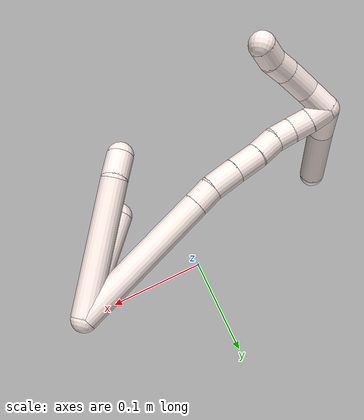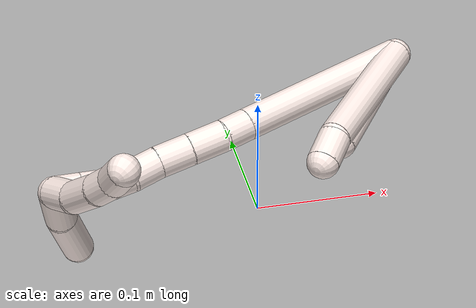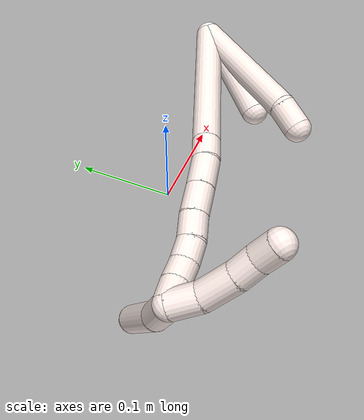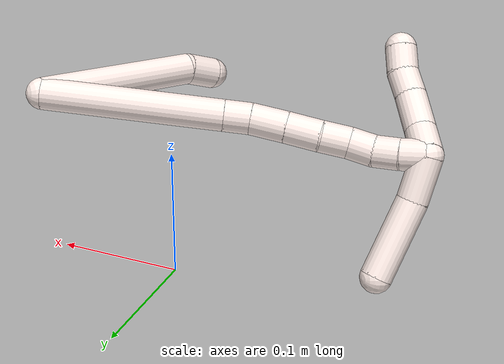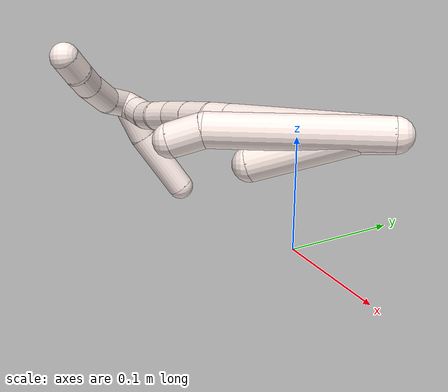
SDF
<sdf version="1.7">
 <world name="default">
  <model name="11">
   <static>0</static>
   <link name="11">
    <collision name="collision-cylinder-e_1_2_8">
     <pose>0.002112 0.006856 0.062228 -0.10974 0.03373 -0.001853</pose>
     <geometry><cylinder><radius>0.0125</radius><length>0.12528</length></cylinder></geometry>
     <surface>
      <friction><ode><mu>1.16</mu><mu2>1.16</mu2><slip1>0</slip1><slip2>0</slip2></ode></friction>
      <contact><ode><kp>1e+06</kp><kd>1</kd><max_vel>0</max_vel><min_depth>0.001</min_depth></ode></contact>
     </surface>
    </collision>
    <visual name="visual-cylinder-e_1_2_8">
     <pose>0.002112 0.006856 0.062228 -0.10974 0.03373 -0.001853</pose>
     <geometry><cylinder><radius>0.0125</radius><length>0.12528</length></cylinder></geometry>
     <material><ambient>1 0.933333 0.909804 1</ambient></material>
    </visual>
    <collision name="collision-cylinder-e_2_8_6">
     <pose>0.005992 0.011383 0.136464 0.191582 0.143496 0.013811</pose>
     <geometry><cylinder><radius>0.0125</radius><length>0.02472</length></cylinder></geometry>
     <surface>
      <friction><ode><mu>1.16</mu><mu2>1.16</mu2><slip1>0</slip1><slip2>0</slip2></ode></friction>
      <contact><ode><kp>1e+06</kp><kd>1</kd><max_vel>0</max_vel><min_depth>0.001</min_depth></ode></contact>
     </surface>
    </collision>
    <visual name="visual-cylinder-e_2_8_6">
     <pose>0.005992 0.011383 0.136464 0.191582 0.143496 0.013811</pose>
     <geometry><cylinder><radius>0.0125</radius><length>0.02472</length></cylinder></geometry>
     <material><ambient>1 0.933333 0.909804 1</ambient></material>
    </visual>
    <collision name="collision-cylinder-e_1_2_9">
     <pose>-6.4e-05 0.000401 0.011723 -0.034192 -0.005433 9.3e-05</pose>
     <geometry><cylinder><radius>0.0125</radius><length>0.023461</length></cylinder></geometry>
     <surface>
      <friction><ode><mu>1.16</mu><mu2>1.16</mu2><slip1>0</slip1><slip2>0</slip2></ode></friction>
      <contact><ode><kp>1e+06</kp><kd>1</kd><max_vel>0</max_vel><min_depth>0.001</min_depth></ode></contact>
     </surface>
    </collision>
    <visual name="visual-cylinder-e_1_2_9">
     <pose>-6.4e-05 0.000401 0.011723 -0.034192 -0.005433 9.3e-05</pose>
     <geometry><cylinder><radius>0.0125</radius><length>0.023461</length></cylinder></geometry>
     <material><ambient>1 0.933333 0.909804 1</ambient></material>
    </visual>
    <collision name="collision-cylinder-e_2_9_5">
     <pose>0.001903 -0.00769 0.060707 0.224075 0.053084 0.005974</pose>
     <geometry><cylinder><radius>0.0125</radius><length>0.076539</length></cylinder></geometry>
     <surface>
      <friction><ode><mu>1.16</mu><mu2>1.16</mu2><slip1>0</slip1><slip2>0</slip2></ode></friction>
      <contact><ode><kp>1e+06</kp><kd>1</kd><max_vel>0</max_vel><min_depth>0.001</min_depth></ode></contact>
     </surface>
    </collision>
    <visual name="visual-cylinder-e_2_9_5">
     <pose>0.001903 -0.00769 0.060707 0.224075 0.053084 0.005974</pose>
     <geometry><cylinder><radius>0.0125</radius><length>0.076539</length></cylinder></geometry>
     <material><ambient>1 0.933333 0.909804 1</ambient></material>
    </visual>
    <collision name="collision-cylinder-e_1_2_10">
     <pose>-0.031981 -0.010741 0.061854 0.171937 -0.471146 -0.041366</pose>
     <geometry><cylinder><radius>0.0125</radius><length>0.140912</length></cylinder></geometry>
     <surface>
      <friction><ode><mu>1.16</mu><mu2>1.16</mu2><slip1>0</slip1><slip2>0</slip2></ode></friction>
      <contact><ode><kp>1e+06</kp><kd>1</kd><max_vel>0</max_vel><min_depth>0.001</min_depth></ode></contact>
     </surface>
    </collision>
    <visual name="visual-cylinder-e_1_2_10">
     <pose>-0.031981 -0.010741 0.061854 0.171937 -0.471146 -0.041366</pose>
     <geometry><cylinder><radius>0.0125</radius><length>0.140912</length></cylinder></geometry>
     <material><ambient>1 0.933333 0.909804 1</ambient></material>
    </visual>
    <collision name="collision-cylinder-e_2_10_11">
     <pose>-0.068695 -0.02309 0.132948 0.17231 -0.467387 -0.041113</pose>
     <geometry><cylinder><radius>0.0125</radius><length>0.021012</length></cylinder></geometry>
     <surface>
      <friction><ode><mu>1.16</mu><mu2>1.16</mu2><slip1>0</slip1><slip2>0</slip2></ode></friction>
      <contact><ode><kp>1e+06</kp><kd>1</kd><max_vel>0</max_vel><min_depth>0.001</min_depth></ode></contact>
     </surface>
    </collision>
    <visual name="visual-cylinder-e_2_10_11">
     <pose>-0.068695 -0.02309 0.132948 0.17231 -0.467387 -0.041113</pose>
     <geometry><cylinder><radius>0.0125</radius><length>0.021012</length></cylinder></geometry>
     <material><ambient>1 0.933333 0.909804 1</ambient></material>
    </visual>
    <collision name="collision-cylinder-e_3_11_12">
     <pose>-0.081184 -0.028324 0.153489 0.310477 -0.578844 -0.093137</pose>
     <geometry><cylinder><radius>0.0125</radius><length>0.028354</length></cylinder></geometry>
     <surface>
      <friction><ode><mu>1.16</mu><mu2>1.16</mu2><slip1>0</slip1><slip2>0</slip2></ode></friction>
      <contact><ode><kp>1e+06</kp><kd>1</kd><max_vel>0</max_vel><min_depth>0.001</min_depth></ode></contact>
     </surface>
    </collision>
    <visual name="visual-cylinder-e_3_11_12">
     <pose>-0.081184 -0.028324 0.153489 0.310477 -0.578844 -0.093137</pose>
     <geometry><cylinder><radius>0.0125</radius><length>0.028354</length></cylinder></geometry>
     <material><ambient>1 0.933333 0.909804 1</ambient></material>
    </visual>
    <collision name="collision-cylinder-e_4_12_13">
     <pose>-0.096419 -0.035585 0.175295 0.333104 -0.59224 -0.102487</pose>
     <geometry><cylinder><radius>0.0125</radius><length>0.026797</length></cylinder></geometry>
     <surface>
      <friction><ode><mu>1.16</mu><mu2>1.16</mu2><slip1>0</slip1><slip2>0</slip2></ode></friction>
      <contact><ode><kp>1e+06</kp><kd>1</kd><max_vel>0</max_vel><min_depth>0.001</min_depth></ode></contact>
     </surface>
    </collision>
    <visual name="visual-cylinder-e_4_12_13">
     <pose>-0.096419 -0.035585 0.175295 0.333104 -0.59224 -0.102487</pose>
     <geometry><cylinder><radius>0.0125</radius><length>0.026797</length></cylinder></geometry>
     <material><ambient>1 0.933333 0.909804 1</ambient></material>
    </visual>
    <collision name="collision-cylinder-e_5_13_14">
     <pose>-0.109116 -0.042093 0.195375 0.2916 -0.481045 -0.072001</pose>
     <geometry><cylinder><radius>0.0125</radius><length>0.022552</length></cylinder></geometry>
     <surface>
      <friction><ode><mu>1.16</mu><mu2>1.16</mu2><slip1>0</slip1><slip2>0</slip2></ode></friction>
      <contact><ode><kp>1e+06</kp><kd>1</kd><max_vel>0</max_vel><min_depth>0.001</min_depth></ode></contact>
     </surface>
    </collision>
    <visual name="visual-cylinder-e_5_13_14">
     <pose>-0.109116 -0.042093 0.195375 0.2916 -0.481045 -0.072001</pose>
     <geometry><cylinder><radius>0.0125</radius><length>0.022552</length></cylinder></geometry>
     <material><ambient>1 0.933333 0.909804 1</ambient></material>
    </visual>
    <collision name="collision-cylinder-e_6_14_15">
     <pose>-0.120472 -0.048264 0.2123 0.421593 -0.651061 -0.144199</pose>
     <geometry><cylinder><radius>0.0125</radius><length>0.020259</length></cylinder></geometry>
     <surface>
      <friction><ode><mu>1.16</mu><mu2>1.16</mu2><slip1>0</slip1><slip2>0</slip2></ode></friction>
      <contact><ode><kp>1e+06</kp><kd>1</kd><max_vel>0</max_vel><min_depth>0.001</min_depth></ode></contact>
     </surface>
    </collision>
    <visual name="visual-cylinder-e_6_14_15">
     <pose>-0.120472 -0.048264 0.2123 0.421593 -0.651061 -0.144199</pose>
     <geometry><cylinder><radius>0.0125</radius><length>0.020259</length></cylinder></geometry>
     <material><ambient>1 0.933333 0.909804 1</ambient></material>
    </visual>
    <collision name="collision-cylinder-e_7_15_16">
     <pose>-0.133831 -0.052707 0.226476 0.16632 -0.80666 -0.071107</pose>
     <geometry><cylinder><radius>0.0125</radius><length>0.020001</length></cylinder></geometry>
     <surface>
      <friction><ode><mu>1.16</mu><mu2>1.16</mu2><slip1>0</slip1><slip2>0</slip2></ode></friction>
      <contact><ode><kp>1e+06</kp><kd>1</kd><max_vel>0</max_vel><min_depth>0.001</min_depth></ode></contact>
     </surface>
    </collision>
    <visual name="visual-cylinder-e_7_15_16">
     <pose>-0.133831 -0.052707 0.226476 0.16632 -0.80666 -0.071107</pose>
     <geometry><cylinder><radius>0.0125</radius><length>0.020001</length></cylinder></geometry>
     <material><ambient>1 0.933333 0.909804 1</ambient></material>
    </visual>
    <collision name="collision-cylinder-e_8_16_1">
     <pose>-0.147877 -0.054301 0.240671 0.060765 -0.746141 -0.02379</pose>
     <geometry><cylinder><radius>0.0125</radius><length>0.020113</length></cylinder></geometry>
     <surface>
      <friction><ode><mu>1.16</mu><mu2>1.16</mu2><slip1>0</slip1><slip2>0</slip2></ode></friction>
      <contact><ode><kp>1e+06</kp><kd>1</kd><max_vel>0</max_vel><min_depth>0.001</min_depth></ode></contact>
     </surface>
    </collision>
    <visual name="visual-cylinder-e_8_16_1">
     <pose>-0.147877 -0.054301 0.240671 0.060765 -0.746141 -0.02379</pose>
     <geometry><cylinder><radius>0.0125</radius><length>0.020113</length></cylinder></geometry>
     <material><ambient>1 0.933333 0.909804 1</ambient></material>
    </visual>
    <collision name="collision-cylinder-e_1_1_17">
     <pose>-0.151783 -0.071811 0.243148 1.85018 0.163089 0.216093</pose>
     <geometry><cylinder><radius>0.0125</radius><length>0.035976</length></cylinder></geometry>
     <surface>
      <friction><ode><mu>1.16</mu><mu2>1.16</mu2><slip1>0</slip1><slip2>0</slip2></ode></friction>
      <contact><ode><kp>1e+06</kp><kd>1</kd><max_vel>0</max_vel><min_depth>0.001</min_depth></ode></contact>
     </surface>
    </collision>
    <visual name="visual-cylinder-e_1_1_17">
     <pose>-0.151783 -0.071811 0.243148 1.85018 0.163089 0.216093</pose>
     <geometry><cylinder><radius>0.0125</radius><length>0.035976</length></cylinder></geometry>
     <material><ambient>1 0.933333 0.909804 1</ambient></material>
    </visual>
    <collision name="collision-cylinder-e_2_17_4">
     <pose>-0.144841 -0.117265 0.224025 2.03533 0.125947 0.203554</pose>
     <geometry><cylinder><radius>0.0125</radius><length>0.064024</length></cylinder></geometry>
     <surface>
      <friction><ode><mu>1.16</mu><mu2>1.16</mu2><slip1>0</slip1><slip2>0</slip2></ode></friction>
      <contact><ode><kp>1e+06</kp><kd>1</kd><max_vel>0</max_vel><min_depth>0.001</min_depth></ode></contact>
     </surface>
    </collision>
    <visual name="visual-cylinder-e_2_17_4">
     <pose>-0.144841 -0.117265 0.224025 2.03533 0.125947 0.203554</pose>
     <geometry><cylinder><radius>0.0125</radius><length>0.064024</length></cylinder></geometry>
     <material><ambient>1 0.933333 0.909804 1</ambient></material>
    </visual>
    <collision name="collision-cylinder-e_1_1_18">
     <pose>-0.145149 -0.046497 0.252307 -1.0938 0.799474 -0.503538</pose>
     <geometry><cylinder><radius>0.0125</radius><length>0.026653</length></cylinder></geometry>
     <surface>
      <friction><ode><mu>1.16</mu><mu2>1.16</mu2><slip1>0</slip1><slip2>0</slip2></ode></friction>
      <contact><ode><kp>1e+06</kp><kd>1</kd><max_vel>0</max_vel><min_depth>0.001</min_depth></ode></contact>
     </surface>
    </collision>
    <visual name="visual-cylinder-e_1_1_18">
     <pose>-0.145149 -0.046497 0.252307 -1.0938 0.799474 -0.503538</pose>
     <geometry><cylinder><radius>0.0125</radius><length>0.026653</length></cylinder></geometry>
     <material><ambient>1 0.933333 0.909804 1</ambient></material>
    </visual>
    <collision name="collision-cylinder-e_2_18_19">
     <pose>-0.126724 -0.025236 0.25863 -1.41392 0.592759 -0.510361</pose>
     <geometry><cylinder><radius>0.0125</radius><length>0.031756</length></cylinder></geometry>
     <surface>
      <friction><ode><mu>1.16</mu><mu2>1.16</mu2><slip1>0</slip1><slip2>0</slip2></ode></friction>
      <contact><ode><kp>1e+06</kp><kd>1</kd><max_vel>0</max_vel><min_depth>0.001</min_depth></ode></contact>
     </surface>
    </collision>
    <visual name="visual-cylinder-e_2_18_19">
     <pose>-0.126724 -0.025236 0.25863 -1.41392 0.592759 -0.510361</pose>
     <geometry><cylinder><radius>0.0125</radius><length>0.031756</length></cylinder></geometry>
     <material><ambient>1 0.933333 0.909804 1</ambient></material>
    </visual>
    <collision name="collision-cylinder-e_3_19_20">
     <pose>-0.112574 -0.003291 0.26092 -1.54484 0.533349 -0.520297</pose>
     <geometry><cylinder><radius>0.0125</radius><length>0.020766</length></cylinder></geometry>
     <surface>
      <friction><ode><mu>1.16</mu><mu2>1.16</mu2><slip1>0</slip1><slip2>0</slip2></ode></friction>
      <contact><ode><kp>1e+06</kp><kd>1</kd><max_vel>0</max_vel><min_depth>0.001</min_depth></ode></contact>
     </surface>
    </collision>
    <visual name="visual-cylinder-e_3_19_20">
     <pose>-0.112574 -0.003291 0.26092 -1.54484 0.533349 -0.520297</pose>
     <geometry><cylinder><radius>0.0125</radius><length>0.020766</length></cylinder></geometry>
     <material><ambient>1 0.933333 0.909804 1</ambient></material>
    </visual>
    <collision name="collision-cylinder-e_4_20_3">
     <pose>-0.103853 0.01533 0.262826 -1.39959 0.336939 -0.284464</pose>
     <geometry><cylinder><radius>0.0125</radius><length>0.020825</length></cylinder></geometry>
     <surface>
      <friction><ode><mu>1.16</mu><mu2>1.16</mu2><slip1>0</slip1><slip2>0</slip2></ode></friction>
      <contact><ode><kp>1e+06</kp><kd>1</kd><max_vel>0</max_vel><min_depth>0.001</min_depth></ode></contact>
     </surface>
    </collision>
    <visual name="visual-cylinder-e_4_20_3">
     <pose>-0.103853 0.01533 0.262826 -1.39959 0.336939 -0.284464</pose>
     <geometry><cylinder><radius>0.0125</radius><length>0.020825</length></cylinder></geometry>
     <material><ambient>1 0.933333 0.909804 1</ambient></material>
    </visual>
    <collision name="collision-sphere-3">
     <pose>-0.100411 0.025014 0.2645 0 -0 0</pose>
     <geometry><sphere><radius>0.0125</radius></sphere></geometry>
     <surface>
      <friction><ode><mu>1.16</mu><mu2>1.16</mu2><slip1>0</slip1><slip2>0</slip2></ode></friction>
      <contact><ode><kp>1e+06</kp><kd>1</kd><max_vel>0</max_vel><min_depth>0.001</min_depth></ode></contact>
     </surface>
    </collision>
    <visual name="visual-sphere-3">
     <pose>-0.100411 0.025014 0.2645 0 -0 0</pose>
     <geometry><sphere><radius>0.0125</radius></sphere></geometry>
     <material><ambient>1 0.933333 0.909804 1</ambient></material>
    </visual>
    <collision name="collision-sphere-20">
     <pose>-0.107295 0.005647 0.261152 0 -0 0</pose>
     <geometry><sphere><radius>0.0125</radius></sphere></geometry>
     <surface>
      <friction><ode><mu>1.16</mu><mu2>1.16</mu2><slip1>0</slip1><slip2>0</slip2></ode></friction>
      <contact><ode><kp>1e+06</kp><kd>1</kd><max_vel>0</max_vel><min_depth>0.001</min_depth></ode></contact>
     </surface>
    </collision>
    <visual name="visual-sphere-20">
     <pose>-0.107295 0.005647 0.261152 0 -0 0</pose>
     <geometry><sphere><radius>0.0125</radius></sphere></geometry>
     <material><ambient>1 0.933333 0.909804 1</ambient></material>
    </visual>
    <collision name="collision-sphere-19">
     <pose>-0.117853 -0.012229 0.260688 0 -0 0</pose>
     <geometry><sphere><radius>0.0125</radius></sphere></geometry>
     <surface>
      <friction><ode><mu>1.16</mu><mu2>1.16</mu2><slip1>0</slip1><slip2>0</slip2></ode></friction>
      <contact><ode><kp>1e+06</kp><kd>1</kd><max_vel>0</max_vel><min_depth>0.001</min_depth></ode></contact>
     </surface>
    </collision>
    <visual name="visual-sphere-19">
     <pose>-0.117853 -0.012229 0.260688 0 -0 0</pose>
     <geometry><sphere><radius>0.0125</radius></sphere></geometry>
     <material><ambient>1 0.933333 0.909804 1</ambient></material>
    </visual>
    <collision name="collision-sphere-10">
     <pose>-0.063961 -0.021482 0.123708 0 -0 0</pose>
     <geometry><sphere><radius>0.0125</radius></sphere></geometry>
     <surface>
      <friction><ode><mu>1.16</mu><mu2>1.16</mu2><slip1>0</slip1><slip2>0</slip2></ode></friction>
      <contact><ode><kp>1e+06</kp><kd>1</kd><max_vel>0</max_vel><min_depth>0.001</min_depth></ode></contact>
     </surface>
    </collision>
    <visual name="visual-sphere-10">
     <pose>-0.063961 -0.021482 0.123708 0 -0 0</pose>
     <geometry><sphere><radius>0.0125</radius></sphere></geometry>
     <material><ambient>1 0.933333 0.909804 1</ambient></material>
    </visual>
    <collision name="collision-sphere-5">
     <pose>0.003934 -0.016181 0.097967 0 -0 0</pose>
     <geometry><sphere><radius>0.0125</radius></sphere></geometry>
     <surface>
      <friction><ode><mu>1.16</mu><mu2>1.16</mu2><slip1>0</slip1><slip2>0</slip2></ode></friction>
      <contact><ode><kp>1e+06</kp><kd>1</kd><max_vel>0</max_vel><min_depth>0.001</min_depth></ode></contact>
     </surface>
    </collision>
    <visual name="visual-sphere-5">
     <pose>0.003934 -0.016181 0.097967 0 -0 0</pose>
     <geometry><sphere><radius>0.0125</radius></sphere></geometry>
     <material><ambient>1 0.933333 0.909804 1</ambient></material>
    </visual>
    <collision name="collision-sphere-6">
     <pose>0.00776 0.009054 0.148474 0 -0 0</pose>
     <geometry><sphere><radius>0.0125</radius></sphere></geometry>
     <surface>
      <friction><ode><mu>1.16</mu><mu2>1.16</mu2><slip1>0</slip1><slip2>0</slip2></ode></friction>
      <contact><ode><kp>1e+06</kp><kd>1</kd><max_vel>0</max_vel><min_depth>0.001</min_depth></ode></contact>
     </surface>
    </collision>
    <visual name="visual-sphere-6">
     <pose>0.00776 0.009054 0.148474 0 -0 0</pose>
     <geometry><sphere><radius>0.0125</radius></sphere></geometry>
     <material><ambient>1 0.933333 0.909804 1</ambient></material>
    </visual>
    <collision name="collision-sphere-9">
     <pose>-0.000127 0.000802 0.023447 0 -0 0</pose>
     <geometry><sphere><radius>0.0125</radius></sphere></geometry>
     <surface>
      <friction><ode><mu>1.16</mu><mu2>1.16</mu2><slip1>0</slip1><slip2>0</slip2></ode></friction>
      <contact><ode><kp>1e+06</kp><kd>1</kd><max_vel>0</max_vel><min_depth>0.001</min_depth></ode></contact>
     </surface>
    </collision>
    <visual name="visual-sphere-9">
     <pose>-0.000127 0.000802 0.023447 0 -0 0</pose>
     <geometry><sphere><radius>0.0125</radius></sphere></geometry>
     <material><ambient>1 0.933333 0.909804 1</ambient></material>
    </visual>
    <collision name="collision-sphere-2">
     <geometry><sphere><radius>0.0125</radius></sphere></geometry>
     <surface>
      <friction><ode><mu>1.16</mu><mu2>1.16</mu2><slip1>0</slip1><slip2>0</slip2></ode></friction>
      <contact><ode><kp>1e+06</kp><kd>1</kd><max_vel>0</max_vel><min_depth>0.001</min_depth></ode></contact>
     </surface>
    </collision>
    <visual name="visual-sphere-2">
     <geometry><sphere><radius>0.0125</radius></sphere></geometry>
     <material><ambient>1 0.933333 0.909804 1</ambient></material>
    </visual>
    <collision name="collision-sphere-8">
     <pose>0.004225 0.013713 0.124455 0 -0 0</pose>
     <geometry><sphere><radius>0.0125</radius></sphere></geometry>
     <surface>
      <friction><ode><mu>1.16</mu><mu2>1.16</mu2><slip1>0</slip1><slip2>0</slip2></ode></friction>
      <contact><ode><kp>1e+06</kp><kd>1</kd><max_vel>0</max_vel><min_depth>0.001</min_depth></ode></contact>
     </surface>
    </collision>
    <visual name="visual-sphere-8">
     <pose>0.004225 0.013713 0.124455 0 -0 0</pose>
     <geometry><sphere><radius>0.0125</radius></sphere></geometry>
     <material><ambient>1 0.933333 0.909804 1</ambient></material>
    </visual>
    <collision name="collision-sphere-11">
     <pose>-0.073428 -0.024698 0.142189 0 -0 0</pose>
     <geometry><sphere><radius>0.0125</radius></sphere></geometry>
     <surface>
      <friction><ode><mu>1.16</mu><mu2>1.16</mu2><slip1>0</slip1><slip2>0</slip2></ode></friction>
      <contact><ode><kp>1e+06</kp><kd>1</kd><max_vel>0</max_vel><min_depth>0.001</min_depth></ode></contact>
     </surface>
    </collision>
    <visual name="visual-sphere-11">
     <pose>-0.073428 -0.024698 0.142189 0 -0 0</pose>
     <geometry><sphere><radius>0.0125</radius></sphere></geometry>
     <material><ambient>1 0.933333 0.909804 1</ambient></material>
    </visual>
    <collision name="collision-sphere-12">
     <pose>-0.088939 -0.03195 0.164789 0 -0 0</pose>
     <geometry><sphere><radius>0.0125</radius></sphere></geometry>
     <surface>
      <friction><ode><mu>1.16</mu><mu2>1.16</mu2><slip1>0</slip1><slip2>0</slip2></ode></friction>
      <contact><ode><kp>1e+06</kp><kd>1</kd><max_vel>0</max_vel><min_depth>0.001</min_depth></ode></contact>
     </surface>
    </collision>
    <visual name="visual-sphere-12">
     <pose>-0.088939 -0.03195 0.164789 0 -0 0</pose>
     <geometry><sphere><radius>0.0125</radius></sphere></geometry>
     <material><ambient>1 0.933333 0.909804 1</ambient></material>
    </visual>
    <collision name="collision-sphere-13">
     <pose>-0.103898 -0.03922 0.1858 0 -0 0</pose>
     <geometry><sphere><radius>0.0125</radius></sphere></geometry>
     <surface>
      <friction><ode><mu>1.16</mu><mu2>1.16</mu2><slip1>0</slip1><slip2>0</slip2></ode></friction>
      <contact><ode><kp>1e+06</kp><kd>1</kd><max_vel>0</max_vel><min_depth>0.001</min_depth></ode></contact>
     </surface>
    </collision>
    <visual name="visual-sphere-13">
     <pose>-0.103898 -0.03922 0.1858 0 -0 0</pose>
     <geometry><sphere><radius>0.0125</radius></sphere></geometry>
     <material><ambient>1 0.933333 0.909804 1</ambient></material>
    </visual>
    <collision name="collision-sphere-14">
     <pose>-0.114333 -0.044967 0.204949 0 -0 0</pose>
     <geometry><sphere><radius>0.0125</radius></sphere></geometry>
     <surface>
      <friction><ode><mu>1.16</mu><mu2>1.16</mu2><slip1>0</slip1><slip2>0</slip2></ode></friction>
      <contact><ode><kp>1e+06</kp><kd>1</kd><max_vel>0</max_vel><min_depth>0.001</min_depth></ode></contact>
     </surface>
    </collision>
    <visual name="visual-sphere-14">
     <pose>-0.114333 -0.044967 0.204949 0 -0 0</pose>
     <geometry><sphere><radius>0.0125</radius></sphere></geometry>
     <material><ambient>1 0.933333 0.909804 1</ambient></material>
    </visual>
    <collision name="collision-sphere-15">
     <pose>-0.12661 -0.051561 0.219652 0 -0 0</pose>
     <geometry><sphere><radius>0.0125</radius></sphere></geometry>
     <surface>
      <friction><ode><mu>1.16</mu><mu2>1.16</mu2><slip1>0</slip1><slip2>0</slip2></ode></friction>
      <contact><ode><kp>1e+06</kp><kd>1</kd><max_vel>0</max_vel><min_depth>0.001</min_depth></ode></contact>
     </surface>
    </collision>
    <visual name="visual-sphere-15">
     <pose>-0.12661 -0.051561 0.219652 0 -0 0</pose>
     <geometry><sphere><radius>0.0125</radius></sphere></geometry>
     <material><ambient>1 0.933333 0.909804 1</ambient></material>
    </visual>
    <collision name="collision-sphere-16">
     <pose>-0.141051 -0.053852 0.2333 0 -0 0</pose>
     <geometry><sphere><radius>0.0125</radius></sphere></geometry>
     <surface>
      <friction><ode><mu>1.16</mu><mu2>1.16</mu2><slip1>0</slip1><slip2>0</slip2></ode></friction>
      <contact><ode><kp>1e+06</kp><kd>1</kd><max_vel>0</max_vel><min_depth>0.001</min_depth></ode></contact>
     </surface>
    </collision>
    <visual name="visual-sphere-16">
     <pose>-0.141051 -0.053852 0.2333 0 -0 0</pose>
     <geometry><sphere><radius>0.0125</radius></sphere></geometry>
     <material><ambient>1 0.933333 0.909804 1</ambient></material>
    </visual>
    <collision name="collision-sphere-1">
     <pose>-0.154704 -0.054749 0.248042 0 -0 0</pose>
     <geometry><sphere><radius>0.0125</radius></sphere></geometry>
     <surface>
      <friction><ode><mu>1.16</mu><mu2>1.16</mu2><slip1>0</slip1><slip2>0</slip2></ode></friction>
      <contact><ode><kp>1e+06</kp><kd>1</kd><max_vel>0</max_vel><min_depth>0.001</min_depth></ode></contact>
     </surface>
    </collision>
    <visual name="visual-sphere-1">
     <pose>-0.154704 -0.054749 0.248042 0 -0 0</pose>
     <geometry><sphere><radius>0.0125</radius></sphere></geometry>
     <material><ambient>1 0.933333 0.909804 1</ambient></material>
    </visual>
    <collision name="collision-sphere-18">
     <pose>-0.135594 -0.038244 0.256573 0 -0 0</pose>
     <geometry><sphere><radius>0.0125</radius></sphere></geometry>
     <surface>
      <friction><ode><mu>1.16</mu><mu2>1.16</mu2><slip1>0</slip1><slip2>0</slip2></ode></friction>
      <contact><ode><kp>1e+06</kp><kd>1</kd><max_vel>0</max_vel><min_depth>0.001</min_depth></ode></contact>
     </surface>
    </collision>
    <visual name="visual-sphere-18">
     <pose>-0.135594 -0.038244 0.256573 0 -0 0</pose>
     <geometry><sphere><radius>0.0125</radius></sphere></geometry>
     <material><ambient>1 0.933333 0.909804 1</ambient></material>
    </visual>
    <collision name="collision-sphere-17">
     <pose>-0.148863 -0.088872 0.238253 0 -0 0</pose>
     <geometry><sphere><radius>0.0125</radius></sphere></geometry>
     <surface>
      <friction><ode><mu>1.16</mu><mu2>1.16</mu2><slip1>0</slip1><slip2>0</slip2></ode></friction>
      <contact><ode><kp>1e+06</kp><kd>1</kd><max_vel>0</max_vel><min_depth>0.001</min_depth></ode></contact>
     </surface>
    </collision>
    <visual name="visual-sphere-17">
     <pose>-0.148863 -0.088872 0.238253 0 -0 0</pose>
     <geometry><sphere><radius>0.0125</radius></sphere></geometry>
     <material><ambient>1 0.933333 0.909804 1</ambient></material>
    </visual>
    <collision name="collision-sphere-4">
     <pose>-0.14082 -0.145658 0.209797 0 -0 0</pose>
     <geometry><sphere><radius>0.0125</radius></sphere></geometry>
     <surface>
      <friction><ode><mu>1.16</mu><mu2>1.16</mu2><slip1>0</slip1><slip2>0</slip2></ode></friction>
      <contact><ode><kp>1e+06</kp><kd>1</kd><max_vel>0</max_vel><min_depth>0.001</min_depth></ode></contact>
     </surface>
    </collision>
    <visual name="visual-sphere-4">
     <pose>-0.14082 -0.145658 0.209797 0 -0 0</pose>
     <geometry><sphere><radius>0.0125</radius></sphere></geometry>
     <material><ambient>1 0.933333 0.909804 1</ambient></material>
    </visual>
    <inertial>
     <pose>-0.063944 -0.025531 0.138196 0 -0 0</pose>
     <mass>0.75</mass>
     <inertia>
      <ixx>0.000459</ixx>
      <ixy>0</ixy>
      <ixz>0</ixz>
      <iyy>0.00044</iyy>
      <iyz>0</iyz>
      <izz>0.000185</izz>
     </inertia>
    </inertial>
   </link>
   <pose>0.110548 0.000126 0.131918 1.6852 0.294989 -0.67555</pose>
  </model>
 </world>
</sdf>
